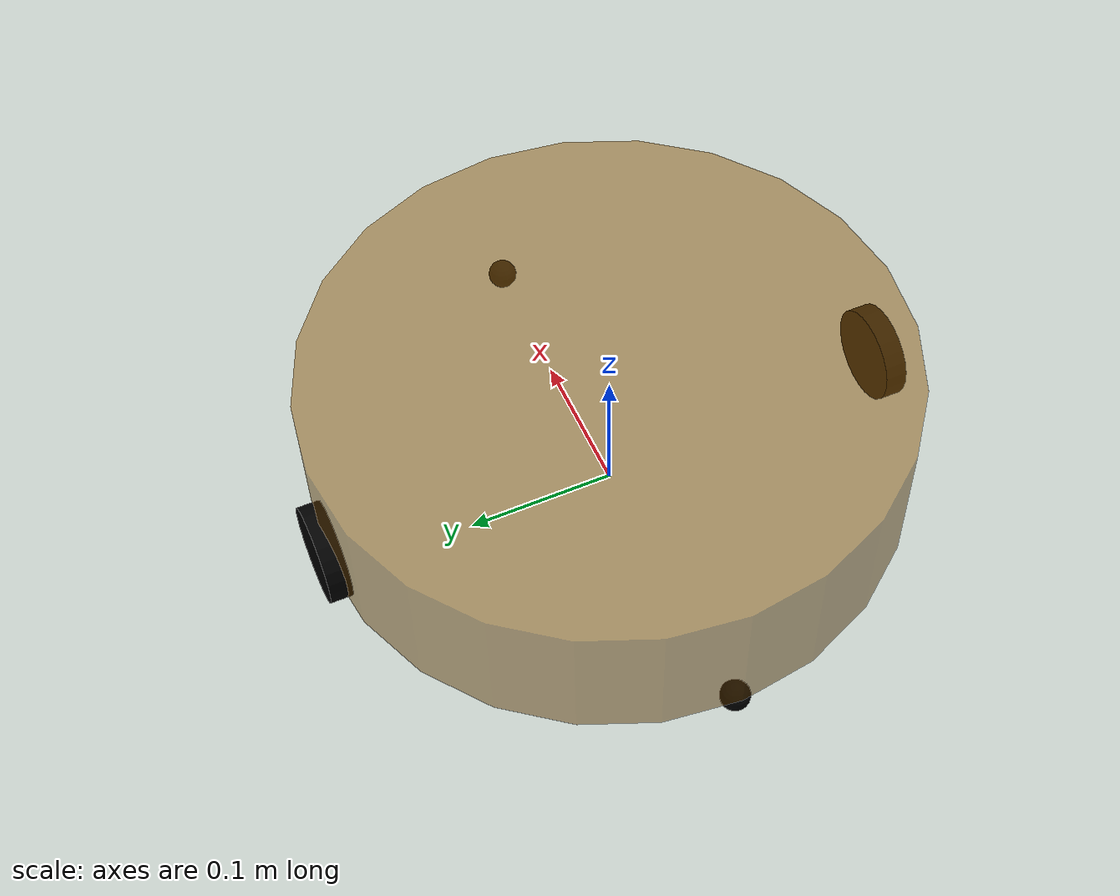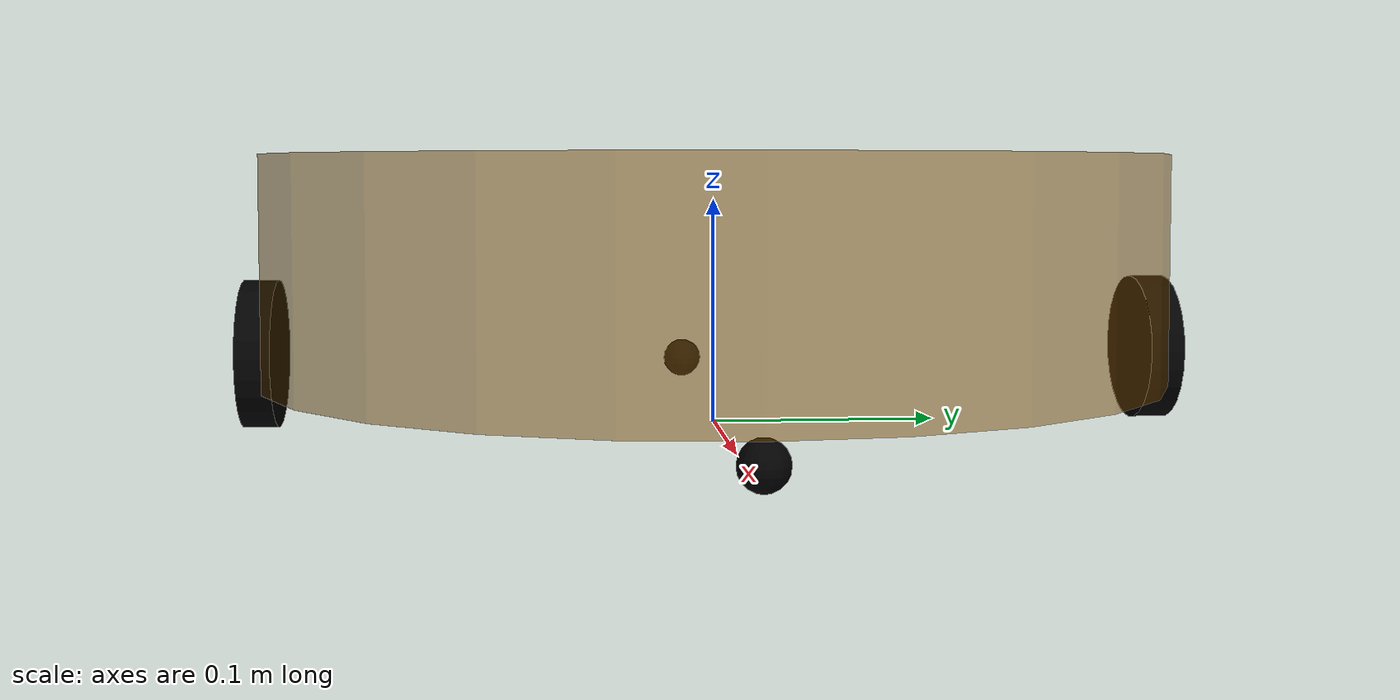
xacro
<robot name="my_base" xmlns:xacro="http://www.ros.org/wiki/xacro">

    <xacro:property name="PI" value="3.141"/>

    <material name="black">
        <color rgba="0.0 0.0 0.0 1.0" />
    </material>

    <xacro:property name="base_footprint_radius" value="0.001" />
    <xacro:property name="base_link_radius" value="0.2" />
    <xacro:property name="base_link_length" value="0.1" />
    <xacro:property name="earth_space" value="0.02" />
    <xacro:property name="base_link_m" value="1.0" />

    <link name="base_footprint">
      <visual>
        <geometry>
          <sphere radius="${base_footprint_radius}" />
        </geometry>
      </visual>
    </link>

    <link name="base_link">
      <visual>
        <geometry>
          <cylinder radius="${base_link_radius}" length="${base_link_length}" />
        </geometry>
        <origin xyz="0 0 0" rpy="0 0 0" />
        <material name="black">
          <color rgba="0.5 0.3 0.0 0.5" />
        </material>
      </visual>
            <collision>
        <geometry>
          <cylinder radius="${base_link_radius}" length="${base_link_length}" />
        </geometry>
        <origin xyz="0 0 0" rpy="0 0 0" />
      </collision>
      <xacro:cylinder_inertial_matrix m="${base_link_m}" r="${base_link_radius}" h="${base_link_length}" />
    </link>

    <joint name="base_link2base_footprint" type="fixed">
      <parent link="base_footprint" />
      <child link="base_link" />
      <origin xyz="0 0 ${earth_space + base_link_length / 2 }" />
    </joint>

    <gazebo reference="base_link">
        <material>Gazebo/Black</material>
    </gazebo>

    <xacro:property name="wheel_radius" value="0.0325" />
    <xacro:property name="wheel_length" value="0.015" />
    <xacro:property name="wheel_m" value="0.05" />

    <xacro:macro name="add_wheels" params="name flag">
      <link name="${name}_wheel">
        <visual>
          <geometry>
            <cylinder radius="${wheel_radius}" length="${wheel_length}" />
          </geometry>
          <origin xyz="0.0 0.0 0.0" rpy="${PI / 2} 0.0 0.0" />
          <material name="black" />
        </visual>
        <collision>
          <geometry>
            <cylinder radius="${wheel_radius}" length="${wheel_length}" />
          </geometry>
          <origin xyz="0.0 0.0 0.0" rpy="${PI / 2} 0.0 0.0" />
        </collision>
        <xacro:cylinder_inertial_matrix m="${wheel_m}" r="${wheel_radius}" h="${wheel_length}" />
      </link>

      <joint name="${name}" type="continuous">
        <parent link="base_link" />
        <child link="${name}_wheel" />
        <origin xyz="0 ${flag * base_link_radius} ${-(earth_space + base_link_length / 2 - wheel_radius) }" />
        <axis xyz="0 1 0" />
      </joint>
      <gazebo reference="${name}_wheel">
        <material>Gazebo/White</material>
      </gazebo>
    </xacro:macro>

    <xacro:add_wheels name="base_l_wheel_joint" flag="1" />
    <xacro:add_wheels name="base_r_wheel_joint" flag="-1" />

    <xacro:property name="support_wheel_radius" value="0.01" />
    <xacro:property name="support_wheel_m" value="0.03" />

    <xacro:macro name="add_support_wheel" params="name flag" >
      <link name="${name}_wheel">
        <visual>
            <geometry>
                <sphere radius="${support_wheel_radius}" />
            </geometry>
            <origin xyz="0 0 0" rpy="0 0 0" />
            <material name="black" />
        </visual>
        <collision>
            <geometry>
                <sphere radius="${support_wheel_radius}" />
            </geometry>
            <origin xyz="0 0 0" rpy="0 0 0" />
        </collision>
        <xacro:sphere_inertial_matrix m="${support_wheel_m}" r="${support_wheel_radius}" />
      </link>

      <joint name="${name}_wheel2base_link" type="continuous">
          <parent link="base_link" />
          <child link="${name}_wheel" />
          <origin xyz="${flag * (base_link_radius - support_wheel_radius)} 0 ${-(base_link_length / 2 + earth_space / 2)}" />
          <axis xyz="1 1 1" />
      </joint>
      <gazebo reference="${name}_wheel">
       <material>Gazebo/Black</material>
      </gazebo>
    </xacro:macro>

    <xacro:add_support_wheel name="front" flag="1" />
    <xacro:add_support_wheel name="back" flag="-1" />

    <gazebo reference="front_wheel">
      <material>Gazebo/White</material>
      <mu1>10</mu1>
      <mu2>10</mu2>
      <kp>1000000.0</kp>
      <kd>100.0</kd>
      <minDepth>0.001</minDepth>
  </gazebo>
    <gazebo reference="back_wheel">
      <material>Gazebo/White</material>
      <mu1>10</mu1>
      <mu2>10</mu2>
      <kp>1000000.0</kp>
      <kd>100.0</kd>
      <minDepth>0.001</minDepth>
  </gazebo>
    <gazebo reference="base_l_wheel_joint_wheel">
      <mu1>10</mu1>
      <mu2>10</mu2>
      <kp>1000000.0</kp>
      <kd>100.0</kd>
      <minDepth>0.001</minDepth>
  </gazebo>
    <gazebo reference="base_r_wheel_joint_wheel">
      <mu1>10</mu1>
      <mu2>10</mu2>
      <kp>1000000.0</kp>
      <kd>100.0</kd>
      <minDepth>0.001</minDepth>
  </gazebo>

  <gazebo>
    <plugin name="differential_drive_controller"
            filename="libgazebo_ros_diff_drive.so">
      <rosDebugLevel>Error</rosDebugLevel>
      <publishWheelTF>false</publishWheelTF>
      <robotNamespace>/</robotNamespace>
      <publishTf>true</publishTf>
      <publishOdomTF>true</publishOdomTF>
      <publishWheelJointState>false</publishWheelJointState>
      <updateRate>50</updateRate>
      <legacyMode>false</legacyMode>
      <leftJoint>base_l_wheel_joint</leftJoint>
      <rightJoint>base_r_wheel_joint</rightJoint>
      <wheelSeparation>0.1</wheelSeparation>
      <wheelDiameter>0.0325</wheelDiameter>
      <broadcastTF>1</broadcastTF>
      <wheelTorque>20</wheelTorque>
      <wheelAcceleration>1.0</wheelAcceleration>
      <commandTopic>cmd_vel</commandTopic>
      <odometryFrame>odom</odometryFrame>
      <odometryTopic>odom</odometryTopic>
      <odometrySource>world</odometrySource>
      <robotBaseFrame>base_link</robotBaseFrame>
    </plugin>
  </gazebo>

</robot>
